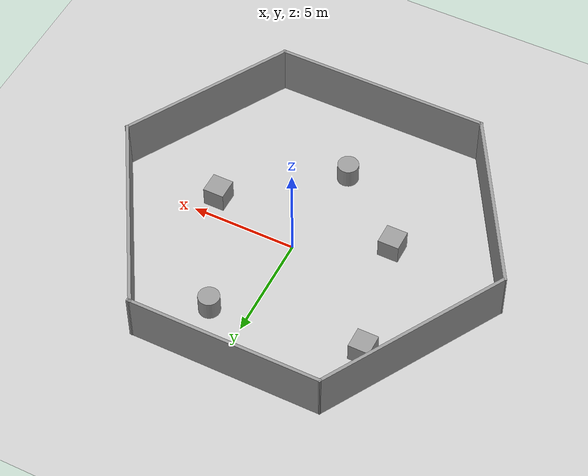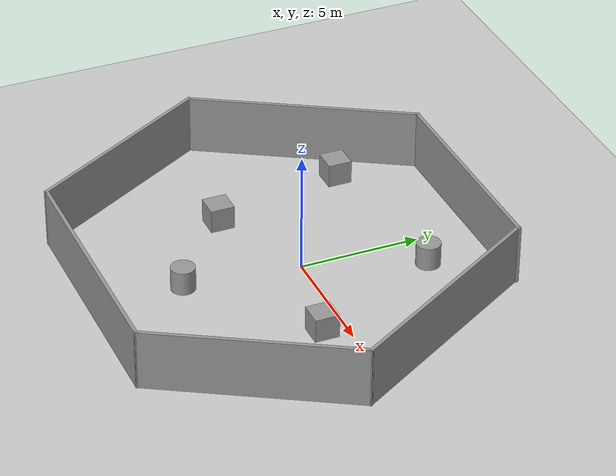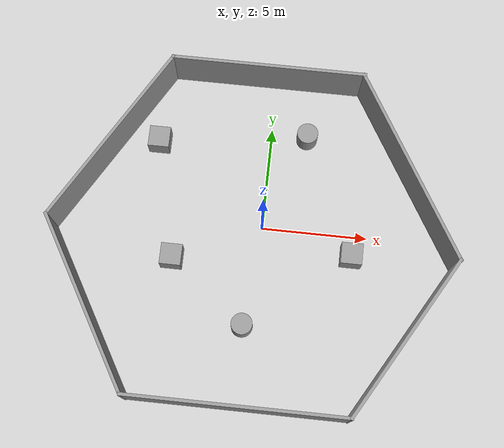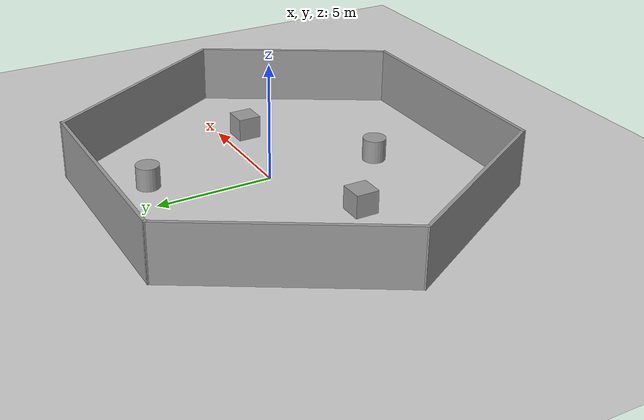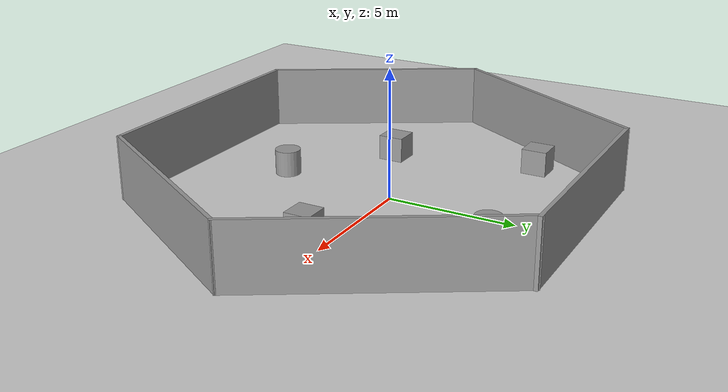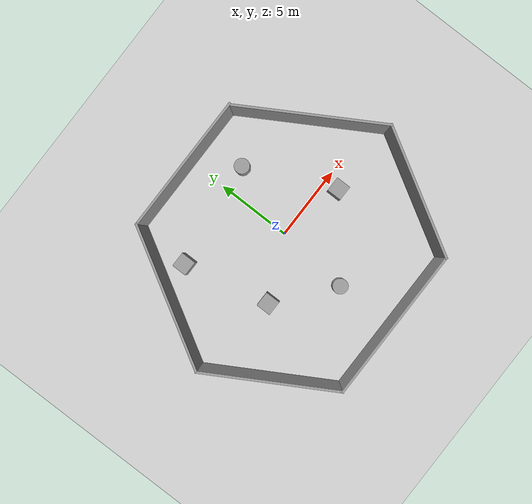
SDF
<sdf version="1.7">
 <world name="default">
  <light name="sun" type="directional">
   <pose>0 0 10 0 -0 0</pose>
   <diffuse>0.8 0.8 0.8 1</diffuse>
   <specular>0.2 0.2 0.2 1</specular>
   <attenuation>
    <range>1000</range>
    <constant>0.9</constant>
    <linear>0.01</linear>
    <quadratic>0.001</quadratic>
   </attenuation>
   <direction>-0.5 0.1 -0.9</direction>
   <spot><inner_angle>0</inner_angle><outer_angle>0</outer_angle><falloff>0</falloff></spot>
  </light>
  <model name="ground_plane">
   <static>1</static>
   <link name="link">
    <collision name="collision">
     <geometry><plane><normal>0 0 1</normal><size>100 100</size></plane></geometry>
     <surface><friction><ode><mu>100</mu><mu2>50</mu2></ode></friction></surface>
    </collision>
    <visual name="visual">
     <cast_shadows>0</cast_shadows>
     <geometry><plane><normal>0 0 1</normal><size>100 100</size></plane></geometry>
     <material>
      <script><uri>file://media/materials/scripts/gazebo.material</uri><name>Gazebo/Grey</name></script>
     </material>
    </visual>
   </link>
  </model>
  <gravity>0 0 -9.8</gravity>
  <magnetic_field>6e-06 2.3e-05 -4.2e-05</magnetic_field>
  <atmosphere type="adiabatic"/>
  <physics type="ode">
   <max_step_size>0.001</max_step_size>
   <real_time_factor>1</real_time_factor>
   <real_time_update_rate>1000</real_time_update_rate>
  </physics>
  <scene><ambient>0.4 0.4 0.4 1</ambient><background>0.7 0.7 0.7 1</background><shadows>1</shadows></scene>
  <audio><device>default</device></audio>
  <spherical_coordinates>
   <surface_model>EARTH_WGS84</surface_model>
   <latitude_deg>0</latitude_deg>
   <longitude_deg>0</longitude_deg>
   <elevation>0</elevation>
   <heading_deg>0</heading_deg>
  </spherical_coordinates>
  <model name="robot_world_model">
   <pose>-0.373117 -0.631562 0 0 -0 0</pose>
   <link name="Wall_1">
    <collision name="Wall_1_Collision">
     <geometry><box><size>9.61148 0.15 2.5</size></box></geometry>
     <pose>0 0 1.25 0 -0 0</pose>
    </collision>
    <visual name="Wall_1_Visual">
     <pose>0 0 1.25 0 -0 0</pose>
     <geometry><box><size>9.61148 0.15 2.5</size></box></geometry>
     <material>
      <script><uri>file://media/materials/scripts/gazebo.material</uri><name>Gazebo/Grey</name></script>
      <ambient>1 1 1 1</ambient>
     </material>
     <meta><layer>0</layer></meta>
    </visual>
    <pose>-6.99446 3.85602 0 0 -0 1.04253</pose>
   </link>
   <link name="Wall_2">
    <collision name="Wall_2_Collision">
     <geometry><box><size>9.25 0.15 2.5</size></box></geometry>
     <pose>0 0 1.25 0 -0 0</pose>
    </collision>
    <visual name="Wall_2_Visual">
     <pose>0 0 1.25 0 -0 0</pose>
     <geometry><box><size>9.25 0.15 2.5</size></box></geometry>
     <material>
      <script><uri>file://media/materials/scripts/gazebo.material</uri><name>Gazebo/Grey</name></script>
      <ambient>1 1 1 1</ambient>
     </material>
     <meta><layer>0</layer></meta>
    </visual>
    <pose>-0.059995 7.94188 0 0 -0 0</pose>
   </link>
   <link name="Wall_3">
    <collision name="Wall_3_Collision">
     <geometry><box><size>9.94823 0.15 2.5</size></box></geometry>
     <pose>0 0 1.25 0 -0 0</pose>
    </collision>
    <visual name="Wall_3_Visual">
     <pose>0 0 1.25 0 -0 0</pose>
     <geometry><box><size>9.94823 0.15 2.5</size></box></geometry>
     <material>
      <script><uri>file://media/materials/scripts/gazebo.material</uri><name>Gazebo/Grey</name></script>
      <ambient>1 1 1 1</ambient>
     </material>
     <meta><layer>0</layer></meta>
    </visual>
    <pose>6.92059 3.72377 0 0 -0 -1.03722</pose>
   </link>
   <link name="Wall_4">
    <collision name="Wall_4_Collision">
     <geometry><box><size>8.75 0.15 2.5</size></box></geometry>
     <pose>0 0 1.25 0 -0 0</pose>
    </collision>
    <visual name="Wall_4_Visual">
     <pose>0 0 1.25 0 -0 0</pose>
     <geometry><box><size>8.75 0.15 2.5</size></box></geometry>
     <material>
      <script><uri>file://media/materials/scripts/gazebo.material</uri><name>Gazebo/Grey</name></script>
      <ambient>1 1 1 1</ambient>
     </material>
     <meta><layer>0</layer></meta>
    </visual>
    <pose>7.26237 -4.21824 0 0 -0 -2.0944</pose>
   </link>
   <link name="Wall_5">
    <collision name="Wall_5_Collision">
     <geometry><box><size>10.25 0.15 2.5</size></box></geometry>
     <pose>0 0 1.25 0 -0 0</pose>
    </collision>
    <visual name="Wall_5_Visual">
     <pose>0 0 1.25 0 -0 0</pose>
     <geometry><box><size>10.25 0.15 2.5</size></box></geometry>
     <material>
      <script><uri>file://media/materials/scripts/gazebo.material</uri><name>Gazebo/Grey</name></script>
      <ambient>1 1 1 1</ambient>
     </material>
     <meta><layer>0</layer></meta>
    </visual>
    <pose>0.062366 -7.94215 0 0 -0 3.14159</pose>
   </link>
   <link name="Wall_6">
    <collision name="Wall_6_Collision">
     <geometry><box><size>9 0.15 2.5</size></box></geometry>
     <pose>0 0 1.25 0 -0 0</pose>
    </collision>
    <visual name="Wall_6_Visual">
     <pose>0 0 1.25 0 -0 0</pose>
     <geometry><box><size>9 0.15 2.5</size></box></geometry>
     <material>
      <script><uri>file://media/materials/scripts/gazebo.material</uri><name>Gazebo/Grey</name></script>
      <ambient>1 1 1 1</ambient>
     </material>
     <meta><layer>0</layer></meta>
    </visual>
    <pose>-7.20013 -4.10998 0 0 -0 2.0944</pose>
   </link>
   <static>1</static>
  </model>
  <model name="unit_box">
   <pose>-4.08239 -1.86963 0.5 0 -0 0</pose>
   <link name="link">
    <inertial>
     <mass>1</mass>
     <inertia>
      <ixx>0.166667</ixx>
      <ixy>0</ixy>
      <ixz>0</ixz>
      <iyy>0.166667</iyy>
      <iyz>0</iyz>
      <izz>0.166667</izz>
     </inertia>
    </inertial>
    <collision name="collision"><geometry><box><size>1 1 1</size></box></geometry></collision>
    <visual name="visual">
     <geometry><box><size>1 1 1</size></box></geometry>
     <material>
      <script><name>Gazebo/Grey</name><uri>file://media/materials/scripts/gazebo.material</uri></script>
     </material>
    </visual>
   </link>
  </model>
  <model name="unit_cylinder">
   <pose>1.71136 4.67623 0.5 0 -0 0</pose>
   <link name="link">
    <inertial>
     <mass>1</mass>
     <inertia><ixx>0.145833</ixx><ixy>0</ixy><ixz>0</ixz><iyy>0.145833</iyy><iyz>0</iyz><izz>0.125</izz></inertia>
    </inertial>
    <collision name="collision">
     <geometry><cylinder><radius>0.5</radius><length>1</length></cylinder></geometry>
    </collision>
    <visual name="visual">
     <geometry><cylinder><radius>0.5</radius><length>1</length></cylinder></geometry>
     <material>
      <script><name>Gazebo/Grey</name><uri>file://media/materials/scripts/gazebo.material</uri></script>
     </material>
    </visual>
   </link>
  </model>
  <model name="unit_box_0">
   <pose>-5.33962 3.80399 0.5 0 -0 0</pose>
   <link name="link">
    <inertial>
     <mass>1</mass>
     <inertia>
      <ixx>0.166667</ixx>
      <ixy>0</ixy>
      <ixz>0</ixz>
      <iyy>0.166667</iyy>
      <iyz>0</iyz>
      <izz>0.166667</izz>
     </inertia>
    </inertial>
    <collision name="collision"><geometry><box><size>1 1 1</size></box></geometry></collision>
    <visual name="visual">
     <geometry><box><size>1 1 1</size></box></geometry>
     <material>
      <script><name>Gazebo/Grey</name><uri>file://media/materials/scripts/gazebo.material</uri></script>
     </material>
    </visual>
   </link>
  </model>
  <model name="unit_cylinder_0">
   <pose>-0.464973 -4.77662 0.5 0 -0 0</pose>
   <link name="link">
    <inertial>
     <mass>1</mass>
     <inertia><ixx>0.145833</ixx><ixy>0</ixy><ixz>0</ixz><iyy>0.145833</iyy><iyz>0</iyz><izz>0.125</izz></inertia>
    </inertial>
    <collision name="collision">
     <geometry><cylinder><radius>0.5</radius><length>1</length></cylinder></geometry>
    </collision>
    <visual name="visual">
     <geometry><cylinder><radius>0.5</radius><length>1</length></cylinder></geometry>
     <material>
      <script><name>Gazebo/Grey</name><uri>file://media/materials/scripts/gazebo.material</uri></script>
     </material>
    </visual>
   </link>
  </model>
  <model name="unit_box_1">
   <pose>4.28937 -0.976282 0.5 0 -0 0</pose>
   <link name="link">
    <inertial>
     <mass>1</mass>
     <inertia>
      <ixx>0.166667</ixx>
      <ixy>0</ixy>
      <ixz>0</ixz>
      <iyy>0.166667</iyy>
      <iyz>0</iyz>
      <izz>0.166667</izz>
     </inertia>
    </inertial>
    <collision name="collision"><geometry><box><size>1 1 1</size></box></geometry></collision>
    <visual name="visual">
     <geometry><box><size>1 1 1</size></box></geometry>
     <material>
      <script><name>Gazebo/Grey</name><uri>file://media/materials/scripts/gazebo.material</uri></script>
     </material>
    </visual>
   </link>
  </model>
 </world>
</sdf>
